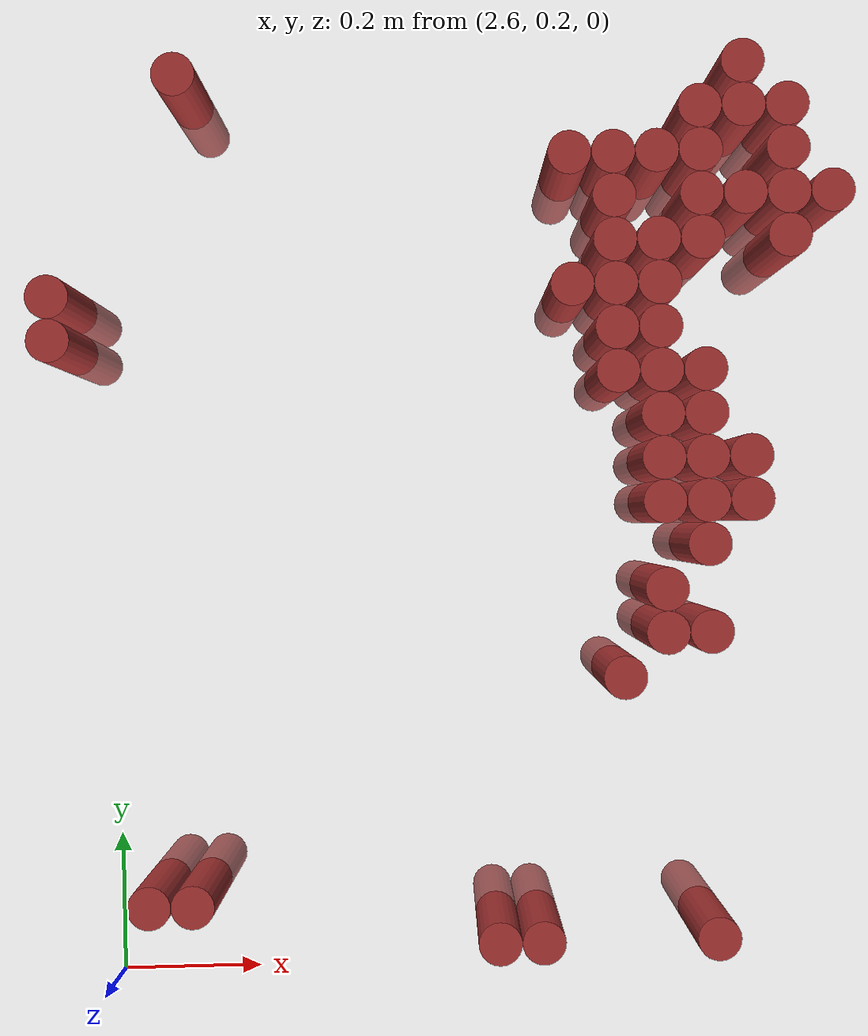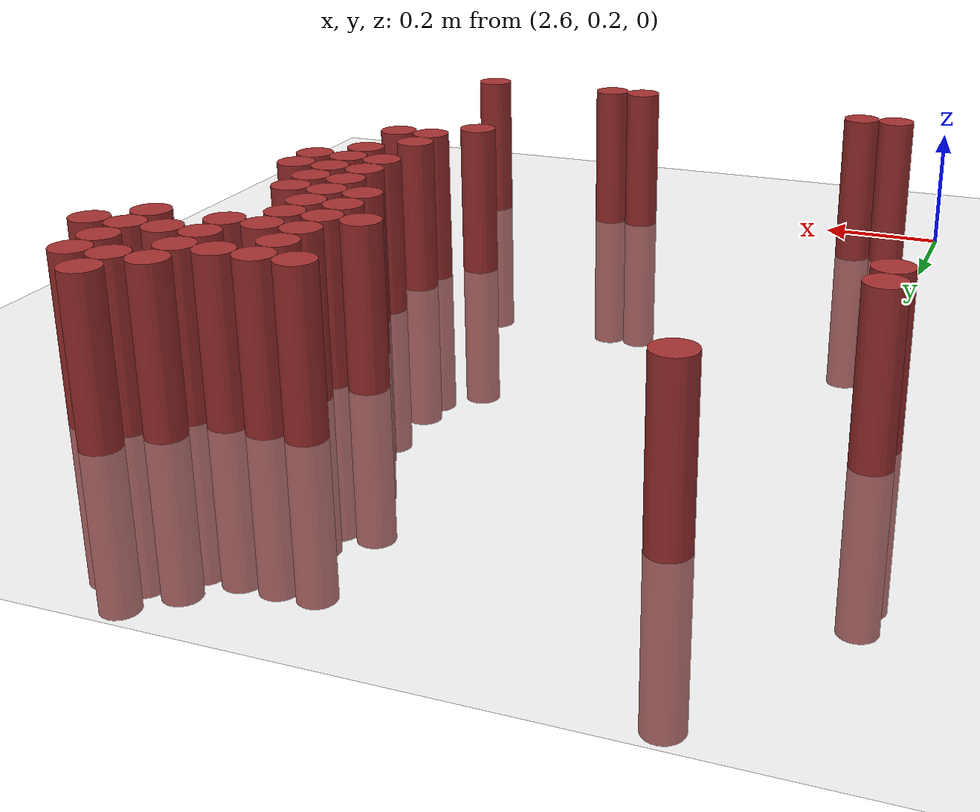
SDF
<sdf version="1.6">
 <world name="default">
  <model name="ground_plane">
   <static>1</static>
   <link name="link">
    <collision name="collision">
     <geometry><plane><normal>0 0 1</normal><size>100 100</size></plane></geometry>
     <surface><friction><ode><mu>100</mu><mu2>50</mu2></ode></friction></surface>
    </collision>
    <visual name="visual">
     <cast_shadows>0</cast_shadows>
     <geometry><plane><normal>0 0 1</normal><size>100 100</size></plane></geometry>
     <material>
      <script><uri>file://media/materials/scripts/gazebo.material</uri><name>Gazebo/Grey</name></script>
     </material>
    </visual>
   </link>
  </model>
  <model name="unit_cylinder_161">
   <static>1</static>
   <pose>2.730000 1.470000 0.000000 0.000000 0.000000 0.000000</pose>
   <link name="link">
    <inertial>
     <mass>1</mass>
     <inertia><ixx>0.145833</ixx><ixy>0</ixy><ixz>0</ixz><iyy>0.145833</iyy><iyz>0</iyz><izz>0.125</izz></inertia>
    </inertial>
    <collision name="collision">
     <geometry><cylinder><radius>0.030000</radius><length>0.5</length></cylinder></geometry>
    </collision>
    <visual name="visual">
     <geometry><cylinder><radius>0.030000</radius><length>0.5</length></cylinder></geometry>
     <material>
      <ambient>0.648000 0.192000 0.192000 1</ambient>
      <diffuse>0.648000 0.192000 0.192000 1</diffuse>
     </material>
     <material>
      <script><name>Gazebo/Grey</name><uri>file://media/materials/scripts/gazebo.material</uri></script>
     </material>
    </visual>
   </link>
  </model>
  <model name="unit_cylinder_162">
   <static>1</static>
   <pose>3.510000 1.470000 0.000000 0.000000 0.000000 0.000000</pose>
   <link name="link">
    <inertial>
     <mass>1</mass>
     <inertia><ixx>0.145833</ixx><ixy>0</ixy><ixz>0</ixz><iyy>0.145833</iyy><iyz>0</iyz><izz>0.125</izz></inertia>
    </inertial>
    <collision name="collision">
     <geometry><cylinder><radius>0.030000</radius><length>0.5</length></cylinder></geometry>
    </collision>
    <visual name="visual">
     <geometry><cylinder><radius>0.030000</radius><length>0.5</length></cylinder></geometry>
     <material>
      <ambient>0.648000 0.192000 0.192000 1</ambient>
      <diffuse>0.648000 0.192000 0.192000 1</diffuse>
     </material>
     <material>
      <script><name>Gazebo/Grey</name><uri>file://media/materials/scripts/gazebo.material</uri></script>
     </material>
    </visual>
   </link>
  </model>
  <model name="unit_cylinder_163">
   <static>1</static>
   <pose>3.450000 1.410000 0.000000 0.000000 0.000000 0.000000</pose>
   <link name="link">
    <inertial>
     <mass>1</mass>
     <inertia><ixx>0.145833</ixx><ixy>0</ixy><ixz>0</ixz><iyy>0.145833</iyy><iyz>0</iyz><izz>0.125</izz></inertia>
    </inertial>
    <collision name="collision">
     <geometry><cylinder><radius>0.030000</radius><length>0.5</length></cylinder></geometry>
    </collision>
    <visual name="visual">
     <geometry><cylinder><radius>0.030000</radius><length>0.5</length></cylinder></geometry>
     <material>
      <ambient>0.648000 0.192000 0.192000 1</ambient>
      <diffuse>0.648000 0.192000 0.192000 1</diffuse>
     </material>
     <material>
      <script><name>Gazebo/Grey</name><uri>file://media/materials/scripts/gazebo.material</uri></script>
     </material>
    </visual>
   </link>
  </model>
  <model name="unit_cylinder_164">
   <static>1</static>
   <pose>3.510000 1.410000 0.000000 0.000000 0.000000 0.000000</pose>
   <link name="link">
    <inertial>
     <mass>1</mass>
     <inertia><ixx>0.145833</ixx><ixy>0</ixy><ixz>0</ixz><iyy>0.145833</iyy><iyz>0</iyz><izz>0.125</izz></inertia>
    </inertial>
    <collision name="collision">
     <geometry><cylinder><radius>0.030000</radius><length>0.5</length></cylinder></geometry>
    </collision>
    <visual name="visual">
     <geometry><cylinder><radius>0.030000</radius><length>0.5</length></cylinder></geometry>
     <material>
      <ambient>0.648000 0.192000 0.192000 1</ambient>
      <diffuse>0.648000 0.192000 0.192000 1</diffuse>
     </material>
     <material>
      <script><name>Gazebo/Grey</name><uri>file://media/materials/scripts/gazebo.material</uri></script>
     </material>
    </visual>
   </link>
  </model>
  <model name="unit_cylinder_165">
   <static>1</static>
   <pose>3.570000 1.410000 0.000000 0.000000 0.000000 0.000000</pose>
   <link name="link">
    <inertial>
     <mass>1</mass>
     <inertia><ixx>0.145833</ixx><ixy>0</ixy><ixz>0</ixz><iyy>0.145833</iyy><iyz>0</iyz><izz>0.125</izz></inertia>
    </inertial>
    <collision name="collision">
     <geometry><cylinder><radius>0.030000</radius><length>0.5</length></cylinder></geometry>
    </collision>
    <visual name="visual">
     <geometry><cylinder><radius>0.030000</radius><length>0.5</length></cylinder></geometry>
     <material>
      <ambient>0.648000 0.192000 0.192000 1</ambient>
      <diffuse>0.648000 0.192000 0.192000 1</diffuse>
     </material>
     <material>
      <script><name>Gazebo/Grey</name><uri>file://media/materials/scripts/gazebo.material</uri></script>
     </material>
    </visual>
   </link>
  </model>
  <model name="unit_cylinder_166">
   <static>1</static>
   <pose>3.270000 1.350000 0.000000 0.000000 0.000000 0.000000</pose>
   <link name="link">
    <inertial>
     <mass>1</mass>
     <inertia><ixx>0.145833</ixx><ixy>0</ixy><ixz>0</ixz><iyy>0.145833</iyy><iyz>0</iyz><izz>0.125</izz></inertia>
    </inertial>
    <collision name="collision">
     <geometry><cylinder><radius>0.030000</radius><length>0.5</length></cylinder></geometry>
    </collision>
    <visual name="visual">
     <geometry><cylinder><radius>0.030000</radius><length>0.5</length></cylinder></geometry>
     <material>
      <ambient>0.648000 0.192000 0.192000 1</ambient>
      <diffuse>0.648000 0.192000 0.192000 1</diffuse>
     </material>
     <material>
      <script><name>Gazebo/Grey</name><uri>file://media/materials/scripts/gazebo.material</uri></script>
     </material>
    </visual>
   </link>
  </model>
  <model name="unit_cylinder_167">
   <static>1</static>
   <pose>3.330000 1.350000 0.000000 0.000000 0.000000 0.000000</pose>
   <link name="link">
    <inertial>
     <mass>1</mass>
     <inertia><ixx>0.145833</ixx><ixy>0</ixy><ixz>0</ixz><iyy>0.145833</iyy><iyz>0</iyz><izz>0.125</izz></inertia>
    </inertial>
    <collision name="collision">
     <geometry><cylinder><radius>0.030000</radius><length>0.5</length></cylinder></geometry>
    </collision>
    <visual name="visual">
     <geometry><cylinder><radius>0.030000</radius><length>0.5</length></cylinder></geometry>
     <material>
      <ambient>0.648000 0.192000 0.192000 1</ambient>
      <diffuse>0.648000 0.192000 0.192000 1</diffuse>
     </material>
     <material>
      <script><name>Gazebo/Grey</name><uri>file://media/materials/scripts/gazebo.material</uri></script>
     </material>
    </visual>
   </link>
  </model>
  <model name="unit_cylinder_168">
   <static>1</static>
   <pose>3.390000 1.350000 0.000000 0.000000 0.000000 0.000000</pose>
   <link name="link">
    <inertial>
     <mass>1</mass>
     <inertia><ixx>0.145833</ixx><ixy>0</ixy><ixz>0</ixz><iyy>0.145833</iyy><iyz>0</iyz><izz>0.125</izz></inertia>
    </inertial>
    <collision name="collision">
     <geometry><cylinder><radius>0.030000</radius><length>0.5</length></cylinder></geometry>
    </collision>
    <visual name="visual">
     <geometry><cylinder><radius>0.030000</radius><length>0.5</length></cylinder></geometry>
     <material>
      <ambient>0.648000 0.192000 0.192000 1</ambient>
      <diffuse>0.648000 0.192000 0.192000 1</diffuse>
     </material>
     <material>
      <script><name>Gazebo/Grey</name><uri>file://media/materials/scripts/gazebo.material</uri></script>
     </material>
    </visual>
   </link>
  </model>
  <model name="unit_cylinder_169">
   <static>1</static>
   <pose>3.450000 1.350000 0.000000 0.000000 0.000000 0.000000</pose>
   <link name="link">
    <inertial>
     <mass>1</mass>
     <inertia><ixx>0.145833</ixx><ixy>0</ixy><ixz>0</ixz><iyy>0.145833</iyy><iyz>0</iyz><izz>0.125</izz></inertia>
    </inertial>
    <collision name="collision">
     <geometry><cylinder><radius>0.030000</radius><length>0.5</length></cylinder></geometry>
    </collision>
    <visual name="visual">
     <geometry><cylinder><radius>0.030000</radius><length>0.5</length></cylinder></geometry>
     <material>
      <ambient>0.648000 0.192000 0.192000 1</ambient>
      <diffuse>0.648000 0.192000 0.192000 1</diffuse>
     </material>
     <material>
      <script><name>Gazebo/Grey</name><uri>file://media/materials/scripts/gazebo.material</uri></script>
     </material>
    </visual>
   </link>
  </model>
  <model name="unit_cylinder_170">
   <static>1</static>
   <pose>3.570000 1.350000 0.000000 0.000000 0.000000 0.000000</pose>
   <link name="link">
    <inertial>
     <mass>1</mass>
     <inertia><ixx>0.145833</ixx><ixy>0</ixy><ixz>0</ixz><iyy>0.145833</iyy><iyz>0</iyz><izz>0.125</izz></inertia>
    </inertial>
    <collision name="collision">
     <geometry><cylinder><radius>0.030000</radius><length>0.5</length></cylinder></geometry>
    </collision>
    <visual name="visual">
     <geometry><cylinder><radius>0.030000</radius><length>0.5</length></cylinder></geometry>
     <material>
      <ambient>0.648000 0.192000 0.192000 1</ambient>
      <diffuse>0.648000 0.192000 0.192000 1</diffuse>
     </material>
     <material>
      <script><name>Gazebo/Grey</name><uri>file://media/materials/scripts/gazebo.material</uri></script>
     </material>
    </visual>
   </link>
  </model>
  <model name="unit_cylinder_172">
   <static>1</static>
   <pose>3.330000 1.290000 0.000000 0.000000 0.000000 0.000000</pose>
   <link name="link">
    <inertial>
     <mass>1</mass>
     <inertia><ixx>0.145833</ixx><ixy>0</ixy><ixz>0</ixz><iyy>0.145833</iyy><iyz>0</iyz><izz>0.125</izz></inertia>
    </inertial>
    <collision name="collision">
     <geometry><cylinder><radius>0.030000</radius><length>0.5</length></cylinder></geometry>
    </collision>
    <visual name="visual">
     <geometry><cylinder><radius>0.030000</radius><length>0.5</length></cylinder></geometry>
     <material>
      <ambient>0.648000 0.192000 0.192000 1</ambient>
      <diffuse>0.648000 0.192000 0.192000 1</diffuse>
     </material>
     <material>
      <script><name>Gazebo/Grey</name><uri>file://media/materials/scripts/gazebo.material</uri></script>
     </material>
    </visual>
   </link>
  </model>
  <model name="unit_cylinder_173">
   <static>1</static>
   <pose>3.450000 1.290000 0.000000 0.000000 0.000000 0.000000</pose>
   <link name="link">
    <inertial>
     <mass>1</mass>
     <inertia><ixx>0.145833</ixx><ixy>0</ixy><ixz>0</ixz><iyy>0.145833</iyy><iyz>0</iyz><izz>0.125</izz></inertia>
    </inertial>
    <collision name="collision">
     <geometry><cylinder><radius>0.030000</radius><length>0.5</length></cylinder></geometry>
    </collision>
    <visual name="visual">
     <geometry><cylinder><radius>0.030000</radius><length>0.5</length></cylinder></geometry>
     <material>
      <ambient>0.648000 0.192000 0.192000 1</ambient>
      <diffuse>0.648000 0.192000 0.192000 1</diffuse>
     </material>
     <material>
      <script><name>Gazebo/Grey</name><uri>file://media/materials/scripts/gazebo.material</uri></script>
     </material>
    </visual>
   </link>
  </model>
  <model name="unit_cylinder_174">
   <static>1</static>
   <pose>3.510000 1.290000 0.000000 0.000000 0.000000 0.000000</pose>
   <link name="link">
    <inertial>
     <mass>1</mass>
     <inertia><ixx>0.145833</ixx><ixy>0</ixy><ixz>0</ixz><iyy>0.145833</iyy><iyz>0</iyz><izz>0.125</izz></inertia>
    </inertial>
    <collision name="collision">
     <geometry><cylinder><radius>0.030000</radius><length>0.5</length></cylinder></geometry>
    </collision>
    <visual name="visual">
     <geometry><cylinder><radius>0.030000</radius><length>0.5</length></cylinder></geometry>
     <material>
      <ambient>0.648000 0.192000 0.192000 1</ambient>
      <diffuse>0.648000 0.192000 0.192000 1</diffuse>
     </material>
     <material>
      <script><name>Gazebo/Grey</name><uri>file://media/materials/scripts/gazebo.material</uri></script>
     </material>
    </visual>
   </link>
  </model>
  <model name="unit_cylinder_175">
   <static>1</static>
   <pose>3.570000 1.290000 0.000000 0.000000 0.000000 0.000000</pose>
   <link name="link">
    <inertial>
     <mass>1</mass>
     <inertia><ixx>0.145833</ixx><ixy>0</ixy><ixz>0</ixz><iyy>0.145833</iyy><iyz>0</iyz><izz>0.125</izz></inertia>
    </inertial>
    <collision name="collision">
     <geometry><cylinder><radius>0.030000</radius><length>0.5</length></cylinder></geometry>
    </collision>
    <visual name="visual">
     <geometry><cylinder><radius>0.030000</radius><length>0.5</length></cylinder></geometry>
     <material>
      <ambient>0.648000 0.192000 0.192000 1</ambient>
      <diffuse>0.648000 0.192000 0.192000 1</diffuse>
     </material>
     <material>
      <script><name>Gazebo/Grey</name><uri>file://media/materials/scripts/gazebo.material</uri></script>
     </material>
    </visual>
   </link>
  </model>
  <model name="unit_cylinder_176">
   <static>1</static>
   <pose>3.630000 1.290000 0.000000 0.000000 0.000000 0.000000</pose>
   <link name="link">
    <inertial>
     <mass>1</mass>
     <inertia><ixx>0.145833</ixx><ixy>0</ixy><ixz>0</ixz><iyy>0.145833</iyy><iyz>0</iyz><izz>0.125</izz></inertia>
    </inertial>
    <collision name="collision">
     <geometry><cylinder><radius>0.030000</radius><length>0.5</length></cylinder></geometry>
    </collision>
    <visual name="visual">
     <geometry><cylinder><radius>0.030000</radius><length>0.5</length></cylinder></geometry>
     <material>
      <ambient>0.648000 0.192000 0.192000 1</ambient>
      <diffuse>0.648000 0.192000 0.192000 1</diffuse>
     </material>
     <material>
      <script><name>Gazebo/Grey</name><uri>file://media/materials/scripts/gazebo.material</uri></script>
     </material>
    </visual>
   </link>
  </model>
  <model name="unit_cylinder_180">
   <static>1</static>
   <pose>3.330000 1.230000 0.000000 0.000000 0.000000 0.000000</pose>
   <link name="link">
    <inertial>
     <mass>1</mass>
     <inertia><ixx>0.145833</ixx><ixy>0</ixy><ixz>0</ixz><iyy>0.145833</iyy><iyz>0</iyz><izz>0.125</izz></inertia>
    </inertial>
    <collision name="collision">
     <geometry><cylinder><radius>0.030000</radius><length>0.5</length></cylinder></geometry>
    </collision>
    <visual name="visual">
     <geometry><cylinder><radius>0.030000</radius><length>0.5</length></cylinder></geometry>
     <material>
      <ambient>0.648000 0.192000 0.192000 1</ambient>
      <diffuse>0.648000 0.192000 0.192000 1</diffuse>
     </material>
     <material>
      <script><name>Gazebo/Grey</name><uri>file://media/materials/scripts/gazebo.material</uri></script>
     </material>
    </visual>
   </link>
  </model>
  <model name="unit_cylinder_181">
   <static>1</static>
   <pose>3.390000 1.230000 0.000000 0.000000 0.000000 0.000000</pose>
   <link name="link">
    <inertial>
     <mass>1</mass>
     <inertia><ixx>0.145833</ixx><ixy>0</ixy><ixz>0</ixz><iyy>0.145833</iyy><iyz>0</iyz><izz>0.125</izz></inertia>
    </inertial>
    <collision name="collision">
     <geometry><cylinder><radius>0.030000</radius><length>0.5</length></cylinder></geometry>
    </collision>
    <visual name="visual">
     <geometry><cylinder><radius>0.030000</radius><length>0.5</length></cylinder></geometry>
     <material>
      <ambient>0.648000 0.192000 0.192000 1</ambient>
      <diffuse>0.648000 0.192000 0.192000 1</diffuse>
     </material>
     <material>
      <script><name>Gazebo/Grey</name><uri>file://media/materials/scripts/gazebo.material</uri></script>
     </material>
    </visual>
   </link>
  </model>
  <model name="unit_cylinder_182">
   <static>1</static>
   <pose>3.450000 1.230000 0.000000 0.000000 0.000000 0.000000</pose>
   <link name="link">
    <inertial>
     <mass>1</mass>
     <inertia><ixx>0.145833</ixx><ixy>0</ixy><ixz>0</ixz><iyy>0.145833</iyy><iyz>0</iyz><izz>0.125</izz></inertia>
    </inertial>
    <collision name="collision">
     <geometry><cylinder><radius>0.030000</radius><length>0.5</length></cylinder></geometry>
    </collision>
    <visual name="visual">
     <geometry><cylinder><radius>0.030000</radius><length>0.5</length></cylinder></geometry>
     <material>
      <ambient>0.648000 0.192000 0.192000 1</ambient>
      <diffuse>0.648000 0.192000 0.192000 1</diffuse>
     </material>
     <material>
      <script><name>Gazebo/Grey</name><uri>file://media/materials/scripts/gazebo.material</uri></script>
     </material>
    </visual>
   </link>
  </model>
  <model name="unit_cylinder_183">
   <static>1</static>
   <pose>3.570000 1.230000 0.000000 0.000000 0.000000 0.000000</pose>
   <link name="link">
    <inertial>
     <mass>1</mass>
     <inertia><ixx>0.145833</ixx><ixy>0</ixy><ixz>0</ixz><iyy>0.145833</iyy><iyz>0</iyz><izz>0.125</izz></inertia>
    </inertial>
    <collision name="collision">
     <geometry><cylinder><radius>0.030000</radius><length>0.5</length></cylinder></geometry>
    </collision>
    <visual name="visual">
     <geometry><cylinder><radius>0.030000</radius><length>0.5</length></cylinder></geometry>
     <material>
      <ambient>0.648000 0.192000 0.192000 1</ambient>
      <diffuse>0.648000 0.192000 0.192000 1</diffuse>
     </material>
     <material>
      <script><name>Gazebo/Grey</name><uri>file://media/materials/scripts/gazebo.material</uri></script>
     </material>
    </visual>
   </link>
  </model>
  <model name="unit_cylinder_186">
   <static>1</static>
   <pose>2.550000 1.170000 0.000000 0.000000 0.000000 0.000000</pose>
   <link name="link">
    <inertial>
     <mass>1</mass>
     <inertia><ixx>0.145833</ixx><ixy>0</ixy><ixz>0</ixz><iyy>0.145833</iyy><iyz>0</iyz><izz>0.125</izz></inertia>
    </inertial>
    <collision name="collision">
     <geometry><cylinder><radius>0.030000</radius><length>0.5</length></cylinder></geometry>
    </collision>
    <visual name="visual">
     <geometry><cylinder><radius>0.030000</radius><length>0.5</length></cylinder></geometry>
     <material>
      <ambient>0.648000 0.192000 0.192000 1</ambient>
      <diffuse>0.648000 0.192000 0.192000 1</diffuse>
     </material>
     <material>
      <script><name>Gazebo/Grey</name><uri>file://media/materials/scripts/gazebo.material</uri></script>
     </material>
    </visual>
   </link>
  </model>
  <model name="unit_cylinder_187">
   <static>1</static>
   <pose>3.270000 1.170000 0.000000 0.000000 0.000000 0.000000</pose>
   <link name="link">
    <inertial>
     <mass>1</mass>
     <inertia><ixx>0.145833</ixx><ixy>0</ixy><ixz>0</ixz><iyy>0.145833</iyy><iyz>0</iyz><izz>0.125</izz></inertia>
    </inertial>
    <collision name="collision">
     <geometry><cylinder><radius>0.030000</radius><length>0.5</length></cylinder></geometry>
    </collision>
    <visual name="visual">
     <geometry><cylinder><radius>0.030000</radius><length>0.5</length></cylinder></geometry>
     <material>
      <ambient>0.648000 0.192000 0.192000 1</ambient>
      <diffuse>0.648000 0.192000 0.192000 1</diffuse>
     </material>
     <material>
      <script><name>Gazebo/Grey</name><uri>file://media/materials/scripts/gazebo.material</uri></script>
     </material>
    </visual>
   </link>
  </model>
  <model name="unit_cylinder_188">
   <static>1</static>
   <pose>3.330000 1.170000 0.000000 0.000000 0.000000 0.000000</pose>
   <link name="link">
    <inertial>
     <mass>1</mass>
     <inertia><ixx>0.145833</ixx><ixy>0</ixy><ixz>0</ixz><iyy>0.145833</iyy><iyz>0</iyz><izz>0.125</izz></inertia>
    </inertial>
    <collision name="collision">
     <geometry><cylinder><radius>0.030000</radius><length>0.5</length></cylinder></geometry>
    </collision>
    <visual name="visual">
     <geometry><cylinder><radius>0.030000</radius><length>0.5</length></cylinder></geometry>
     <material>
      <ambient>0.648000 0.192000 0.192000 1</ambient>
      <diffuse>0.648000 0.192000 0.192000 1</diffuse>
     </material>
     <material>
      <script><name>Gazebo/Grey</name><uri>file://media/materials/scripts/gazebo.material</uri></script>
     </material>
    </visual>
   </link>
  </model>
  <model name="unit_cylinder_189">
   <static>1</static>
   <pose>3.390000 1.170000 0.000000 0.000000 0.000000 0.000000</pose>
   <link name="link">
    <inertial>
     <mass>1</mass>
     <inertia><ixx>0.145833</ixx><ixy>0</ixy><ixz>0</ixz><iyy>0.145833</iyy><iyz>0</iyz><izz>0.125</izz></inertia>
    </inertial>
    <collision name="collision">
     <geometry><cylinder><radius>0.030000</radius><length>0.5</length></cylinder></geometry>
    </collision>
    <visual name="visual">
     <geometry><cylinder><radius>0.030000</radius><length>0.5</length></cylinder></geometry>
     <material>
      <ambient>0.648000 0.192000 0.192000 1</ambient>
      <diffuse>0.648000 0.192000 0.192000 1</diffuse>
     </material>
     <material>
      <script><name>Gazebo/Grey</name><uri>file://media/materials/scripts/gazebo.material</uri></script>
     </material>
    </visual>
   </link>
  </model>
  <model name="unit_cylinder_191">
   <static>1</static>
   <pose>2.550000 1.110000 0.000000 0.000000 0.000000 0.000000</pose>
   <link name="link">
    <inertial>
     <mass>1</mass>
     <inertia><ixx>0.145833</ixx><ixy>0</ixy><ixz>0</ixz><iyy>0.145833</iyy><iyz>0</iyz><izz>0.125</izz></inertia>
    </inertial>
    <collision name="collision">
     <geometry><cylinder><radius>0.030000</radius><length>0.5</length></cylinder></geometry>
    </collision>
    <visual name="visual">
     <geometry><cylinder><radius>0.030000</radius><length>0.5</length></cylinder></geometry>
     <material>
      <ambient>0.648000 0.192000 0.192000 1</ambient>
      <diffuse>0.648000 0.192000 0.192000 1</diffuse>
     </material>
     <material>
      <script><name>Gazebo/Grey</name><uri>file://media/materials/scripts/gazebo.material</uri></script>
     </material>
    </visual>
   </link>
  </model>
  <model name="unit_cylinder_192">
   <static>1</static>
   <pose>3.330000 1.110000 0.000000 0.000000 0.000000 0.000000</pose>
   <link name="link">
    <inertial>
     <mass>1</mass>
     <inertia><ixx>0.145833</ixx><ixy>0</ixy><ixz>0</ixz><iyy>0.145833</iyy><iyz>0</iyz><izz>0.125</izz></inertia>
    </inertial>
    <collision name="collision">
     <geometry><cylinder><radius>0.030000</radius><length>0.5</length></cylinder></geometry>
    </collision>
    <visual name="visual">
     <geometry><cylinder><radius>0.030000</radius><length>0.5</length></cylinder></geometry>
     <material>
      <ambient>0.648000 0.192000 0.192000 1</ambient>
      <diffuse>0.648000 0.192000 0.192000 1</diffuse>
     </material>
     <material>
      <script><name>Gazebo/Grey</name><uri>file://media/materials/scripts/gazebo.material</uri></script>
     </material>
    </visual>
   </link>
  </model>
  <model name="unit_cylinder_193">
   <static>1</static>
   <pose>3.390000 1.110000 0.000000 0.000000 0.000000 0.000000</pose>
   <link name="link">
    <inertial>
     <mass>1</mass>
     <inertia><ixx>0.145833</ixx><ixy>0</ixy><ixz>0</ixz><iyy>0.145833</iyy><iyz>0</iyz><izz>0.125</izz></inertia>
    </inertial>
    <collision name="collision">
     <geometry><cylinder><radius>0.030000</radius><length>0.5</length></cylinder></geometry>
    </collision>
    <visual name="visual">
     <geometry><cylinder><radius>0.030000</radius><length>0.5</length></cylinder></geometry>
     <material>
      <ambient>0.648000 0.192000 0.192000 1</ambient>
      <diffuse>0.648000 0.192000 0.192000 1</diffuse>
     </material>
     <material>
      <script><name>Gazebo/Grey</name><uri>file://media/materials/scripts/gazebo.material</uri></script>
     </material>
    </visual>
   </link>
  </model>
  <model name="unit_cylinder_195">
   <static>1</static>
   <pose>3.330000 1.050000 0.000000 0.000000 0.000000 0.000000</pose>
   <link name="link">
    <inertial>
     <mass>1</mass>
     <inertia><ixx>0.145833</ixx><ixy>0</ixy><ixz>0</ixz><iyy>0.145833</iyy><iyz>0</iyz><izz>0.125</izz></inertia>
    </inertial>
    <collision name="collision">
     <geometry><cylinder><radius>0.030000</radius><length>0.5</length></cylinder></geometry>
    </collision>
    <visual name="visual">
     <geometry><cylinder><radius>0.030000</radius><length>0.5</length></cylinder></geometry>
     <material>
      <ambient>0.648000 0.192000 0.192000 1</ambient>
      <diffuse>0.648000 0.192000 0.192000 1</diffuse>
     </material>
     <material>
      <script><name>Gazebo/Grey</name><uri>file://media/materials/scripts/gazebo.material</uri></script>
     </material>
    </visual>
   </link>
  </model>
  <model name="unit_cylinder_196">
   <static>1</static>
   <pose>3.390000 1.050000 0.000000 0.000000 0.000000 0.000000</pose>
   <link name="link">
    <inertial>
     <mass>1</mass>
     <inertia><ixx>0.145833</ixx><ixy>0</ixy><ixz>0</ixz><iyy>0.145833</iyy><iyz>0</iyz><izz>0.125</izz></inertia>
    </inertial>
    <collision name="collision">
     <geometry><cylinder><radius>0.030000</radius><length>0.5</length></cylinder></geometry>
    </collision>
    <visual name="visual">
     <geometry><cylinder><radius>0.030000</radius><length>0.5</length></cylinder></geometry>
     <material>
      <ambient>0.648000 0.192000 0.192000 1</ambient>
      <diffuse>0.648000 0.192000 0.192000 1</diffuse>
     </material>
     <material>
      <script><name>Gazebo/Grey</name><uri>file://media/materials/scripts/gazebo.material</uri></script>
     </material>
    </visual>
   </link>
  </model>
  <model name="unit_cylinder_197">
   <static>1</static>
   <pose>3.450000 1.050000 0.000000 0.000000 0.000000 0.000000</pose>
   <link name="link">
    <inertial>
     <mass>1</mass>
     <inertia><ixx>0.145833</ixx><ixy>0</ixy><ixz>0</ixz><iyy>0.145833</iyy><iyz>0</iyz><izz>0.125</izz></inertia>
    </inertial>
    <collision name="collision">
     <geometry><cylinder><radius>0.030000</radius><length>0.5</length></cylinder></geometry>
    </collision>
    <visual name="visual">
     <geometry><cylinder><radius>0.030000</radius><length>0.5</length></cylinder></geometry>
     <material>
      <ambient>0.648000 0.192000 0.192000 1</ambient>
      <diffuse>0.648000 0.192000 0.192000 1</diffuse>
     </material>
     <material>
      <script><name>Gazebo/Grey</name><uri>file://media/materials/scripts/gazebo.material</uri></script>
     </material>
    </visual>
   </link>
  </model>
  <model name="unit_cylinder_202">
   <static>1</static>
   <pose>3.390000 0.990000 0.000000 0.000000 0.000000 0.000000</pose>
   <link name="link">
    <inertial>
     <mass>1</mass>
     <inertia><ixx>0.145833</ixx><ixy>0</ixy><ixz>0</ixz><iyy>0.145833</iyy><iyz>0</iyz><izz>0.125</izz></inertia>
    </inertial>
    <collision name="collision">
     <geometry><cylinder><radius>0.030000</radius><length>0.5</length></cylinder></geometry>
    </collision>
    <visual name="visual">
     <geometry><cylinder><radius>0.030000</radius><length>0.5</length></cylinder></geometry>
     <material>
      <ambient>0.648000 0.192000 0.192000 1</ambient>
      <diffuse>0.648000 0.192000 0.192000 1</diffuse>
     </material>
     <material>
      <script><name>Gazebo/Grey</name><uri>file://media/materials/scripts/gazebo.material</uri></script>
     </material>
    </visual>
   </link>
  </model>
  <model name="unit_cylinder_203">
   <static>1</static>
   <pose>3.450000 0.990000 0.000000 0.000000 0.000000 0.000000</pose>
   <link name="link">
    <inertial>
     <mass>1</mass>
     <inertia><ixx>0.145833</ixx><ixy>0</ixy><ixz>0</ixz><iyy>0.145833</iyy><iyz>0</iyz><izz>0.125</izz></inertia>
    </inertial>
    <collision name="collision">
     <geometry><cylinder><radius>0.030000</radius><length>0.5</length></cylinder></geometry>
    </collision>
    <visual name="visual">
     <geometry><cylinder><radius>0.030000</radius><length>0.5</length></cylinder></geometry>
     <material>
      <ambient>0.648000 0.192000 0.192000 1</ambient>
      <diffuse>0.648000 0.192000 0.192000 1</diffuse>
     </material>
     <material>
      <script><name>Gazebo/Grey</name><uri>file://media/materials/scripts/gazebo.material</uri></script>
     </material>
    </visual>
   </link>
  </model>
  <model name="unit_cylinder_206">
   <static>1</static>
   <pose>3.390000 0.930000 0.000000 0.000000 0.000000 0.000000</pose>
   <link name="link">
    <inertial>
     <mass>1</mass>
     <inertia><ixx>0.145833</ixx><ixy>0</ixy><ixz>0</ixz><iyy>0.145833</iyy><iyz>0</iyz><izz>0.125</izz></inertia>
    </inertial>
    <collision name="collision">
     <geometry><cylinder><radius>0.030000</radius><length>0.5</length></cylinder></geometry>
    </collision>
    <visual name="visual">
     <geometry><cylinder><radius>0.030000</radius><length>0.5</length></cylinder></geometry>
     <material>
      <ambient>0.648000 0.192000 0.192000 1</ambient>
      <diffuse>0.648000 0.192000 0.192000 1</diffuse>
     </material>
     <material>
      <script><name>Gazebo/Grey</name><uri>file://media/materials/scripts/gazebo.material</uri></script>
     </material>
    </visual>
   </link>
  </model>
  <model name="unit_cylinder_207">
   <static>1</static>
   <pose>3.450000 0.930000 0.000000 0.000000 0.000000 0.000000</pose>
   <link name="link">
    <inertial>
     <mass>1</mass>
     <inertia><ixx>0.145833</ixx><ixy>0</ixy><ixz>0</ixz><iyy>0.145833</iyy><iyz>0</iyz><izz>0.125</izz></inertia>
    </inertial>
    <collision name="collision">
     <geometry><cylinder><radius>0.030000</radius><length>0.5</length></cylinder></geometry>
    </collision>
    <visual name="visual">
     <geometry><cylinder><radius>0.030000</radius><length>0.5</length></cylinder></geometry>
     <material>
      <ambient>0.648000 0.192000 0.192000 1</ambient>
      <diffuse>0.648000 0.192000 0.192000 1</diffuse>
     </material>
     <material>
      <script><name>Gazebo/Grey</name><uri>file://media/materials/scripts/gazebo.material</uri></script>
     </material>
    </visual>
   </link>
  </model>
  <model name="unit_cylinder_208">
   <static>1</static>
   <pose>3.510000 0.930000 0.000000 0.000000 0.000000 0.000000</pose>
   <link name="link">
    <inertial>
     <mass>1</mass>
     <inertia><ixx>0.145833</ixx><ixy>0</ixy><ixz>0</ixz><iyy>0.145833</iyy><iyz>0</iyz><izz>0.125</izz></inertia>
    </inertial>
    <collision name="collision">
     <geometry><cylinder><radius>0.030000</radius><length>0.5</length></cylinder></geometry>
    </collision>
    <visual name="visual">
     <geometry><cylinder><radius>0.030000</radius><length>0.5</length></cylinder></geometry>
     <material>
      <ambient>0.648000 0.192000 0.192000 1</ambient>
      <diffuse>0.648000 0.192000 0.192000 1</diffuse>
     </material>
     <material>
      <script><name>Gazebo/Grey</name><uri>file://media/materials/scripts/gazebo.material</uri></script>
     </material>
    </visual>
   </link>
  </model>
  <model name="unit_cylinder_209">
   <static>1</static>
   <pose>3.390000 0.870000 0.000000 0.000000 0.000000 0.000000</pose>
   <link name="link">
    <inertial>
     <mass>1</mass>
     <inertia><ixx>0.145833</ixx><ixy>0</ixy><ixz>0</ixz><iyy>0.145833</iyy><iyz>0</iyz><izz>0.125</izz></inertia>
    </inertial>
    <collision name="collision">
     <geometry><cylinder><radius>0.030000</radius><length>0.5</length></cylinder></geometry>
    </collision>
    <visual name="visual">
     <geometry><cylinder><radius>0.030000</radius><length>0.5</length></cylinder></geometry>
     <material>
      <ambient>0.648000 0.192000 0.192000 1</ambient>
      <diffuse>0.648000 0.192000 0.192000 1</diffuse>
     </material>
     <material>
      <script><name>Gazebo/Grey</name><uri>file://media/materials/scripts/gazebo.material</uri></script>
     </material>
    </visual>
   </link>
  </model>
  <model name="unit_cylinder_210">
   <static>1</static>
   <pose>3.450000 0.870000 0.000000 0.000000 0.000000 0.000000</pose>
   <link name="link">
    <inertial>
     <mass>1</mass>
     <inertia><ixx>0.145833</ixx><ixy>0</ixy><ixz>0</ixz><iyy>0.145833</iyy><iyz>0</iyz><izz>0.125</izz></inertia>
    </inertial>
    <collision name="collision">
     <geometry><cylinder><radius>0.030000</radius><length>0.5</length></cylinder></geometry>
    </collision>
    <visual name="visual">
     <geometry><cylinder><radius>0.030000</radius><length>0.5</length></cylinder></geometry>
     <material>
      <ambient>0.648000 0.192000 0.192000 1</ambient>
      <diffuse>0.648000 0.192000 0.192000 1</diffuse>
     </material>
     <material>
      <script><name>Gazebo/Grey</name><uri>file://media/materials/scripts/gazebo.material</uri></script>
     </material>
    </visual>
   </link>
  </model>
  <model name="unit_cylinder_211">
   <static>1</static>
   <pose>3.510000 0.870000 0.000000 0.000000 0.000000 0.000000</pose>
   <link name="link">
    <inertial>
     <mass>1</mass>
     <inertia><ixx>0.145833</ixx><ixy>0</ixy><ixz>0</ixz><iyy>0.145833</iyy><iyz>0</iyz><izz>0.125</izz></inertia>
    </inertial>
    <collision name="collision">
     <geometry><cylinder><radius>0.030000</radius><length>0.5</length></cylinder></geometry>
    </collision>
    <visual name="visual">
     <geometry><cylinder><radius>0.030000</radius><length>0.5</length></cylinder></geometry>
     <material>
      <ambient>0.648000 0.192000 0.192000 1</ambient>
      <diffuse>0.648000 0.192000 0.192000 1</diffuse>
     </material>
     <material>
      <script><name>Gazebo/Grey</name><uri>file://media/materials/scripts/gazebo.material</uri></script>
     </material>
    </visual>
   </link>
  </model>
  <model name="unit_cylinder_212">
   <static>1</static>
   <pose>3.450000 0.810000 0.000000 0.000000 0.000000 0.000000</pose>
   <link name="link">
    <inertial>
     <mass>1</mass>
     <inertia><ixx>0.145833</ixx><ixy>0</ixy><ixz>0</ixz><iyy>0.145833</iyy><iyz>0</iyz><izz>0.125</izz></inertia>
    </inertial>
    <collision name="collision">
     <geometry><cylinder><radius>0.030000</radius><length>0.5</length></cylinder></geometry>
    </collision>
    <visual name="visual">
     <geometry><cylinder><radius>0.030000</radius><length>0.5</length></cylinder></geometry>
     <material>
      <ambient>0.648000 0.192000 0.192000 1</ambient>
      <diffuse>0.648000 0.192000 0.192000 1</diffuse>
     </material>
     <material>
      <script><name>Gazebo/Grey</name><uri>file://media/materials/scripts/gazebo.material</uri></script>
     </material>
    </visual>
   </link>
  </model>
  <model name="unit_cylinder_213">
   <static>1</static>
   <pose>3.390000 0.750000 0.000000 0.000000 0.000000 0.000000</pose>
   <link name="link">
    <inertial>
     <mass>1</mass>
     <inertia><ixx>0.145833</ixx><ixy>0</ixy><ixz>0</ixz><iyy>0.145833</iyy><iyz>0</iyz><izz>0.125</izz></inertia>
    </inertial>
    <collision name="collision">
     <geometry><cylinder><radius>0.030000</radius><length>0.5</length></cylinder></geometry>
    </collision>
    <visual name="visual">
     <geometry><cylinder><radius>0.030000</radius><length>0.5</length></cylinder></geometry>
     <material>
      <ambient>0.648000 0.192000 0.192000 1</ambient>
      <diffuse>0.648000 0.192000 0.192000 1</diffuse>
     </material>
     <material>
      <script><name>Gazebo/Grey</name><uri>file://media/materials/scripts/gazebo.material</uri></script>
     </material>
    </visual>
   </link>
  </model>
  <model name="unit_cylinder_214">
   <static>1</static>
   <pose>3.390000 0.690000 0.000000 0.000000 0.000000 0.000000</pose>
   <link name="link">
    <inertial>
     <mass>1</mass>
     <inertia><ixx>0.145833</ixx><ixy>0</ixy><ixz>0</ixz><iyy>0.145833</iyy><iyz>0</iyz><izz>0.125</izz></inertia>
    </inertial>
    <collision name="collision">
     <geometry><cylinder><radius>0.030000</radius><length>0.5</length></cylinder></geometry>
    </collision>
    <visual name="visual">
     <geometry><cylinder><radius>0.030000</radius><length>0.5</length></cylinder></geometry>
     <material>
      <ambient>0.648000 0.192000 0.192000 1</ambient>
      <diffuse>0.648000 0.192000 0.192000 1</diffuse>
     </material>
     <material>
      <script><name>Gazebo/Grey</name><uri>file://media/materials/scripts/gazebo.material</uri></script>
     </material>
    </visual>
   </link>
  </model>
  <model name="unit_cylinder_215">
   <static>1</static>
   <pose>3.450000 0.690000 0.000000 0.000000 0.000000 0.000000</pose>
   <link name="link">
    <inertial>
     <mass>1</mass>
     <inertia><ixx>0.145833</ixx><ixy>0</ixy><ixz>0</ixz><iyy>0.145833</iyy><iyz>0</iyz><izz>0.125</izz></inertia>
    </inertial>
    <collision name="collision">
     <geometry><cylinder><radius>0.030000</radius><length>0.5</length></cylinder></geometry>
    </collision>
    <visual name="visual">
     <geometry><cylinder><radius>0.030000</radius><length>0.5</length></cylinder></geometry>
     <material>
      <ambient>0.648000 0.192000 0.192000 1</ambient>
      <diffuse>0.648000 0.192000 0.192000 1</diffuse>
     </material>
     <material>
      <script><name>Gazebo/Grey</name><uri>file://media/materials/scripts/gazebo.material</uri></script>
     </material>
    </visual>
   </link>
  </model>
  <model name="unit_cylinder_216">
   <static>1</static>
   <pose>3.330000 0.630000 0.000000 0.000000 0.000000 0.000000</pose>
   <link name="link">
    <inertial>
     <mass>1</mass>
     <inertia><ixx>0.145833</ixx><ixy>0</ixy><ixz>0</ixz><iyy>0.145833</iyy><iyz>0</iyz><izz>0.125</izz></inertia>
    </inertial>
    <collision name="collision">
     <geometry><cylinder><radius>0.030000</radius><length>0.5</length></cylinder></geometry>
    </collision>
    <visual name="visual">
     <geometry><cylinder><radius>0.030000</radius><length>0.5</length></cylinder></geometry>
     <material>
      <ambient>0.648000 0.192000 0.192000 1</ambient>
      <diffuse>0.648000 0.192000 0.192000 1</diffuse>
     </material>
     <material>
      <script><name>Gazebo/Grey</name><uri>file://media/materials/scripts/gazebo.material</uri></script>
     </material>
    </visual>
   </link>
  </model>
  <model name="unit_cylinder_220">
   <static>1</static>
   <pose>2.670000 0.330000 0.000000 0.000000 0.000000 0.000000</pose>
   <link name="link">
    <inertial>
     <mass>1</mass>
     <inertia><ixx>0.145833</ixx><ixy>0</ixy><ixz>0</ixz><iyy>0.145833</iyy><iyz>0</iyz><izz>0.125</izz></inertia>
    </inertial>
    <collision name="collision">
     <geometry><cylinder><radius>0.030000</radius><length>0.5</length></cylinder></geometry>
    </collision>
    <visual name="visual">
     <geometry><cylinder><radius>0.030000</radius><length>0.5</length></cylinder></geometry>
     <material>
      <ambient>0.648000 0.192000 0.192000 1</ambient>
      <diffuse>0.648000 0.192000 0.192000 1</diffuse>
     </material>
     <material>
      <script><name>Gazebo/Grey</name><uri>file://media/materials/scripts/gazebo.material</uri></script>
     </material>
    </visual>
   </link>
  </model>
  <model name="unit_cylinder_221">
   <static>1</static>
   <pose>2.730000 0.330000 0.000000 0.000000 0.000000 0.000000</pose>
   <link name="link">
    <inertial>
     <mass>1</mass>
     <inertia><ixx>0.145833</ixx><ixy>0</ixy><ixz>0</ixz><iyy>0.145833</iyy><iyz>0</iyz><izz>0.125</izz></inertia>
    </inertial>
    <collision name="collision">
     <geometry><cylinder><radius>0.030000</radius><length>0.5</length></cylinder></geometry>
    </collision>
    <visual name="visual">
     <geometry><cylinder><radius>0.030000</radius><length>0.5</length></cylinder></geometry>
     <material>
      <ambient>0.648000 0.192000 0.192000 1</ambient>
      <diffuse>0.648000 0.192000 0.192000 1</diffuse>
     </material>
     <material>
      <script><name>Gazebo/Grey</name><uri>file://media/materials/scripts/gazebo.material</uri></script>
     </material>
    </visual>
   </link>
  </model>
  <model name="unit_cylinder_223">
   <static>1</static>
   <pose>3.150000 0.270000 0.000000 0.000000 0.000000 0.000000</pose>
   <link name="link">
    <inertial>
     <mass>1</mass>
     <inertia><ixx>0.145833</ixx><ixy>0</ixy><ixz>0</ixz><iyy>0.145833</iyy><iyz>0</iyz><izz>0.125</izz></inertia>
    </inertial>
    <collision name="collision">
     <geometry><cylinder><radius>0.030000</radius><length>0.5</length></cylinder></geometry>
    </collision>
    <visual name="visual">
     <geometry><cylinder><radius>0.030000</radius><length>0.5</length></cylinder></geometry>
     <material>
      <ambient>0.648000 0.192000 0.192000 1</ambient>
      <diffuse>0.648000 0.192000 0.192000 1</diffuse>
     </material>
     <material>
      <script><name>Gazebo/Grey</name><uri>file://media/materials/scripts/gazebo.material</uri></script>
     </material>
    </visual>
   </link>
  </model>
  <model name="unit_cylinder_224">
   <static>1</static>
   <pose>3.210000 0.270000 0.000000 0.000000 0.000000 0.000000</pose>
   <link name="link">
    <inertial>
     <mass>1</mass>
     <inertia><ixx>0.145833</ixx><ixy>0</ixy><ixz>0</ixz><iyy>0.145833</iyy><iyz>0</iyz><izz>0.125</izz></inertia>
    </inertial>
    <collision name="collision">
     <geometry><cylinder><radius>0.030000</radius><length>0.5</length></cylinder></geometry>
    </collision>
    <visual name="visual">
     <geometry><cylinder><radius>0.030000</radius><length>0.5</length></cylinder></geometry>
     <material>
      <ambient>0.648000 0.192000 0.192000 1</ambient>
      <diffuse>0.648000 0.192000 0.192000 1</diffuse>
     </material>
     <material>
      <script><name>Gazebo/Grey</name><uri>file://media/materials/scripts/gazebo.material</uri></script>
     </material>
    </visual>
   </link>
  </model>
  <model name="unit_cylinder_225">
   <static>1</static>
   <pose>3.450000 0.270000 0.000000 0.000000 0.000000 0.000000</pose>
   <link name="link">
    <inertial>
     <mass>1</mass>
     <inertia><ixx>0.145833</ixx><ixy>0</ixy><ixz>0</ixz><iyy>0.145833</iyy><iyz>0</iyz><izz>0.125</izz></inertia>
    </inertial>
    <collision name="collision">
     <geometry><cylinder><radius>0.030000</radius><length>0.5</length></cylinder></geometry>
    </collision>
    <visual name="visual">
     <geometry><cylinder><radius>0.030000</radius><length>0.5</length></cylinder></geometry>
     <material>
      <ambient>0.648000 0.192000 0.192000 1</ambient>
      <diffuse>0.648000 0.192000 0.192000 1</diffuse>
     </material>
     <material>
      <script><name>Gazebo/Grey</name><uri>file://media/materials/scripts/gazebo.material</uri></script>
     </material>
    </visual>
   </link>
  </model>
 </world>
</sdf>
